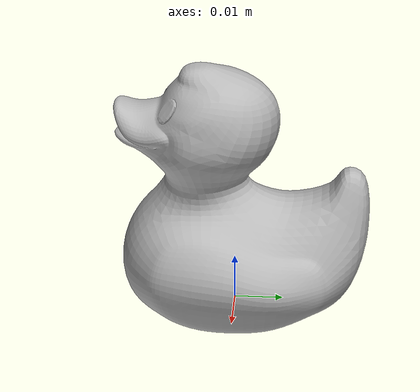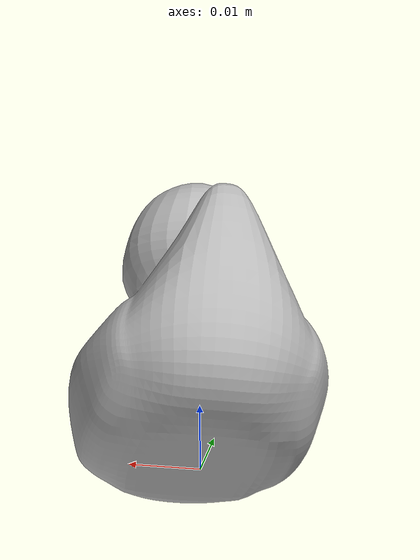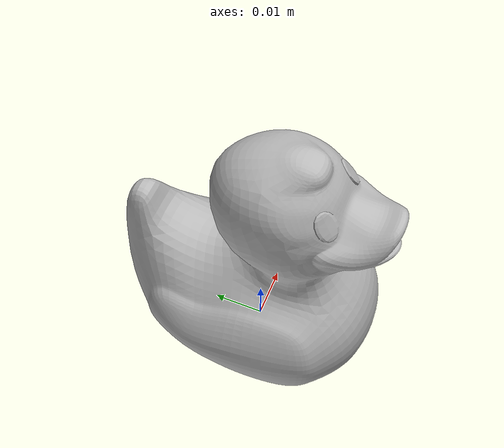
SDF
<?xml version="1.0" ?>
<sdf version="1.6">
  <model name="duck">
    <static>true</static>
    <link name="link">
      <visual name="visual">
        <geometry>
          <mesh>
            <uri>model://foxy_description/assets/duck/duck.dae</uri>
          </mesh>
        </geometry>
      </visual>
      <collision name="collision">
        <pose>0 0 0.026 0 0 0</pose>
        <geometry>
          <box>
            <size>0.052 0.052 0.052</size>
          </box>
        </geometry>
      </collision>
    </link>
  </model>
</sdf>
